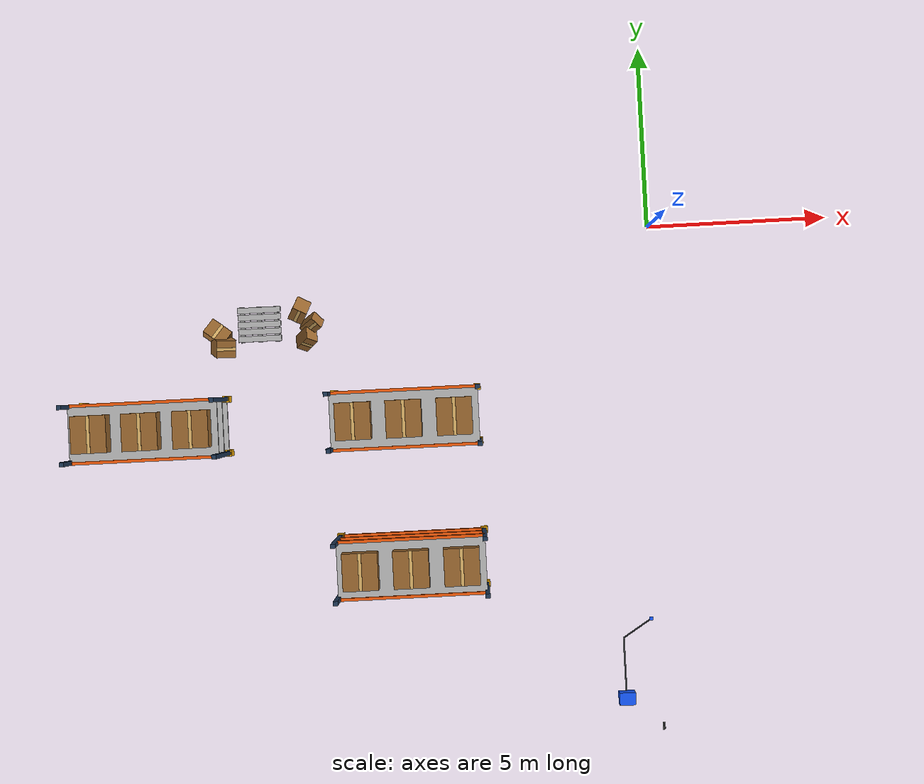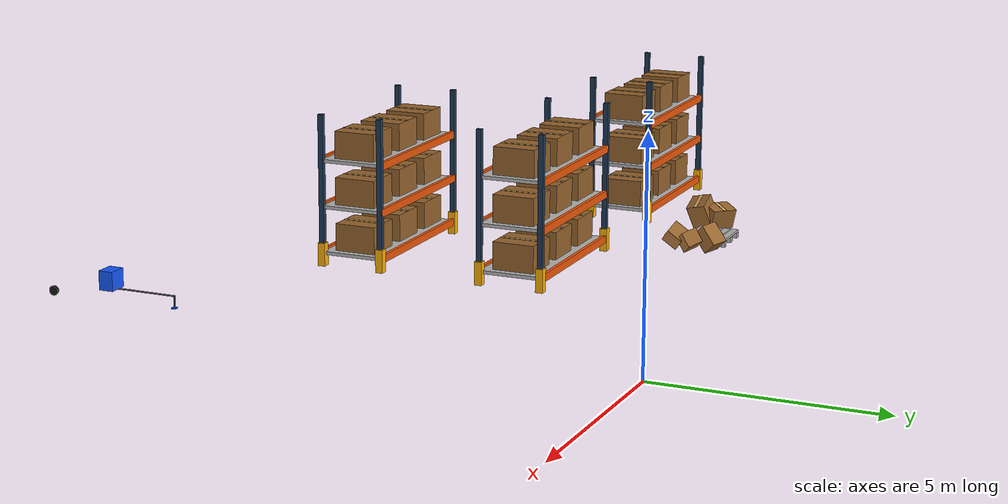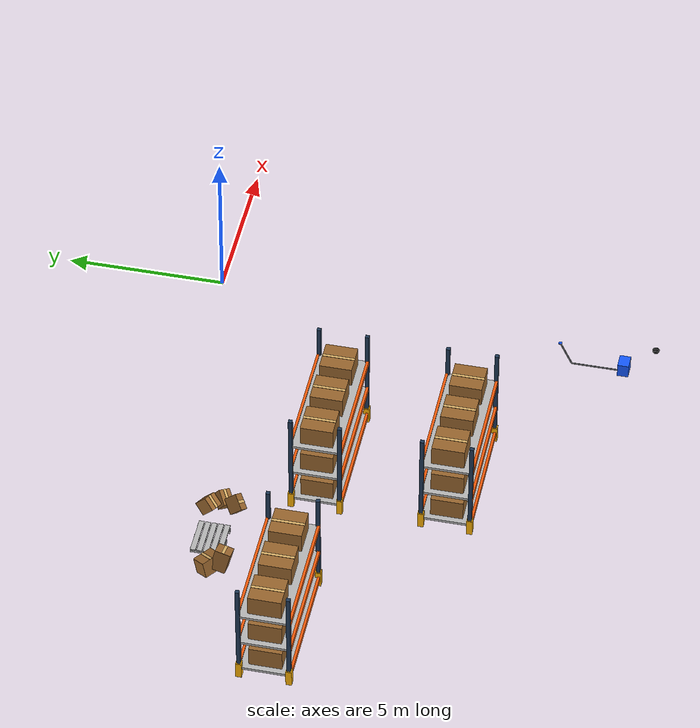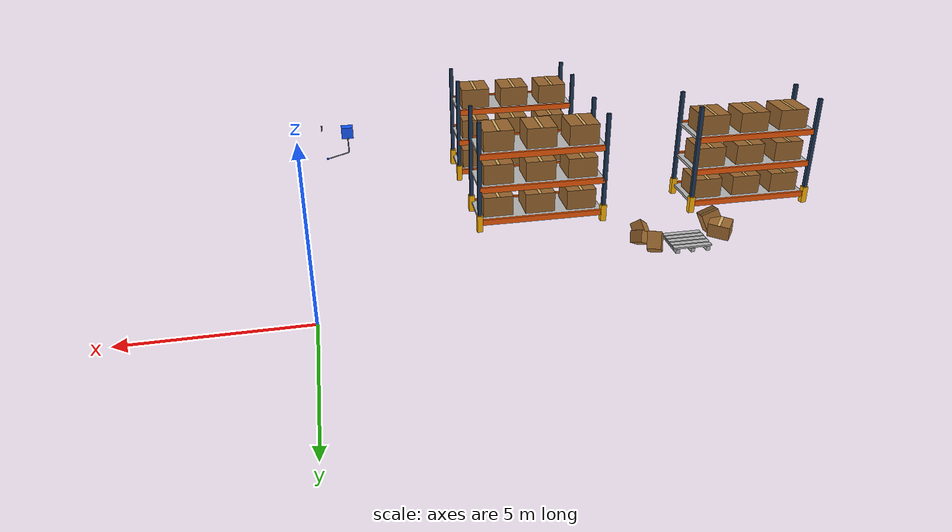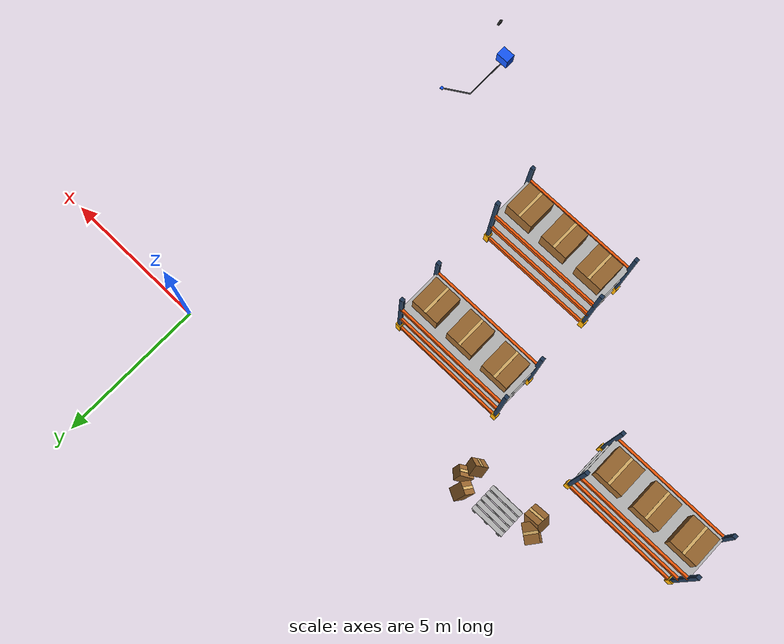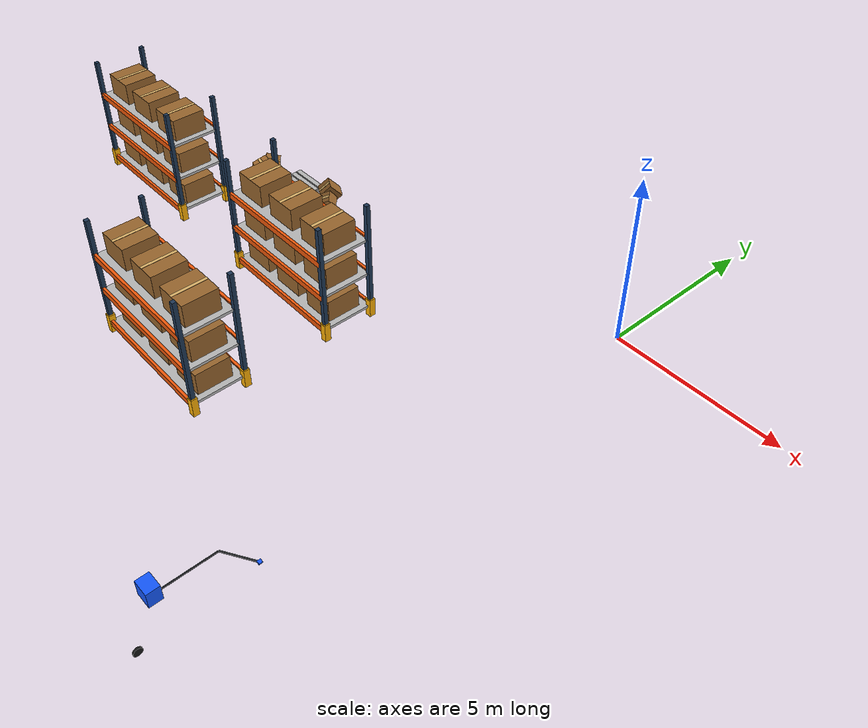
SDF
<sdf version="1.9">
 <world name="factory">
  <model name="rack_-1_0_0">
   <static>true</static>
   <pose>-7 -9 0 0 0 0</pose>
   <link name="body">
    <visual name="post0_visual">
     <pose>-2 -0.75 1.8 0 0 0</pose>
     <geometry><box><size>0.12 0.12 3.6</size></box></geometry>
     <material><ambient>.12 .22 .34 1</ambient><diffuse>.12 .22 .34 1</diffuse></material>
    </visual>
    <collision name="post0_collision">
     <pose>-2 -0.75 1.8 0 0 0</pose>
     <geometry><box><size>0.12 0.12 3.6</size></box></geometry>
    </collision>
    <visual name="guard0_visual">
     <pose>-2 -0.75 0.275 0 0 0</pose>
     <geometry><box><size>0.18 0.18 0.55</size></box></geometry>
     <material><ambient>1 .7 .02 1</ambient><diffuse>1 .7 .02 1</diffuse></material>
    </visual>
    <collision name="guard0_collision">
     <pose>-2 -0.75 0.275 0 0 0</pose>
     <geometry><box><size>0.18 0.18 0.55</size></box></geometry>
    </collision>
    <visual name="post1_visual">
     <pose>2 -0.75 1.8 0 0 0</pose>
     <geometry><box><size>0.12 0.12 3.6</size></box></geometry>
     <material><ambient>.12 .22 .34 1</ambient><diffuse>.12 .22 .34 1</diffuse></material>
    </visual>
    <collision name="post1_collision">
     <pose>2 -0.75 1.8 0 0 0</pose>
     <geometry><box><size>0.12 0.12 3.6</size></box></geometry>
    </collision>
    <visual name="guard1_visual">
     <pose>2 -0.75 0.275 0 0 0</pose>
     <geometry><box><size>0.18 0.18 0.55</size></box></geometry>
     <material><ambient>1 .7 .02 1</ambient><diffuse>1 .7 .02 1</diffuse></material>
    </visual>
    <collision name="guard1_collision">
     <pose>2 -0.75 0.275 0 0 0</pose>
     <geometry><box><size>0.18 0.18 0.55</size></box></geometry>
    </collision>
    <visual name="post2_visual">
     <pose>-2 0.75 1.8 0 0 0</pose>
     <geometry><box><size>0.12 0.12 3.6</size></box></geometry>
     <material><ambient>.12 .22 .34 1</ambient><diffuse>.12 .22 .34 1</diffuse></material>
    </visual>
    <collision name="post2_collision">
     <pose>-2 0.75 1.8 0 0 0</pose>
     <geometry><box><size>0.12 0.12 3.6</size></box></geometry>
    </collision>
    <visual name="guard2_visual">
     <pose>-2 0.75 0.275 0 0 0</pose>
     <geometry><box><size>0.18 0.18 0.55</size></box></geometry>
     <material><ambient>1 .7 .02 1</ambient><diffuse>1 .7 .02 1</diffuse></material>
    </visual>
    <collision name="guard2_collision">
     <pose>-2 0.75 0.275 0 0 0</pose>
     <geometry><box><size>0.18 0.18 0.55</size></box></geometry>
    </collision>
    <visual name="post3_visual">
     <pose>2 0.75 1.8 0 0 0</pose>
     <geometry><box><size>0.12 0.12 3.6</size></box></geometry>
     <material><ambient>.12 .22 .34 1</ambient><diffuse>.12 .22 .34 1</diffuse></material>
    </visual>
    <collision name="post3_collision">
     <pose>2 0.75 1.8 0 0 0</pose>
     <geometry><box><size>0.12 0.12 3.6</size></box></geometry>
    </collision>
    <visual name="guard3_visual">
     <pose>2 0.75 0.275 0 0 0</pose>
     <geometry><box><size>0.18 0.18 0.55</size></box></geometry>
     <material><ambient>1 .7 .02 1</ambient><diffuse>1 .7 .02 1</diffuse></material>
    </visual>
    <collision name="guard3_collision">
     <pose>2 0.75 0.275 0 0 0</pose>
     <geometry><box><size>0.18 0.18 0.55</size></box></geometry>
    </collision>
    <visual name="shelf0_visual">
     <pose>0 0 0.3 0 0 0</pose>
     <geometry><mesh><uri>model://factory_scene_assets/meshes/wood_010.dae</uri></mesh></geometry>
    </visual>
    <collision name="shelf0_collision">
     <pose>0 0 0.3 0 0 0</pose>
     <geometry><box><size>4 1.5 0.08</size></box></geometry>
    </collision>
    <visual name="beam0_0_visual">
     <pose>0 -0.77 0.3 0 0 0</pose>
     <geometry><box><size>4 0.08 0.18</size></box></geometry>
     <material><ambient>.95 .35 .035 1</ambient><diffuse>.95 .35 .035 1</diffuse></material>
    </visual>
    <collision name="beam0_0_collision">
     <pose>0 -0.77 0.3 0 0 0</pose>
     <geometry><box><size>4 0.08 0.18</size></box></geometry>
    </collision>
    <visual name="beam0_1_visual">
     <pose>0 0.77 0.3 0 0 0</pose>
     <geometry><box><size>4 0.08 0.18</size></box></geometry>
     <material><ambient>.95 .35 .035 1</ambient><diffuse>.95 .35 .035 1</diffuse></material>
    </visual>
    <collision name="beam0_1_collision">
     <pose>0 0.77 0.3 0 0 0</pose>
     <geometry><box><size>4 0.08 0.18</size></box></geometry>
    </collision>
    <visual name="cargo0_0_visual">
     <pose>-1.35 0 0.665 0 0 0</pose>
     <geometry><box><size>0.95 1 0.65</size></box></geometry>
     <material><ambient>.60 .40 .18 1</ambient><diffuse>.60 .40 .18 1</diffuse></material>
    </visual>
    <collision name="cargo0_0_collision">
     <pose>-1.35 0 0.665 0 0 0</pose>
     <geometry><box><size>0.95 1 0.65</size></box></geometry>
    </collision>
    <visual name="cargo0_0_tape_visual">
     <pose>-1.35 0 0.993 0 0 0</pose>
     <geometry><box><size>0.09 1 0.006</size></box></geometry>
     <material><ambient>.85 .69 .4 1</ambient><diffuse>.85 .69 .4 1</diffuse></material>
    </visual>
    <visual name="cargo0_1_visual">
     <pose>0 0 0.665 0 0 0</pose>
     <geometry><box><size>0.95 1 0.65</size></box></geometry>
     <material><ambient>.60 .40 .18 1</ambient><diffuse>.60 .40 .18 1</diffuse></material>
    </visual>
    <collision name="cargo0_1_collision">
     <pose>0 0 0.665 0 0 0</pose>
     <geometry><box><size>0.95 1 0.65</size></box></geometry>
    </collision>
    <visual name="cargo0_1_tape_visual">
     <pose>0 0 0.993 0 0 0</pose>
     <geometry><box><size>0.09 1 0.006</size></box></geometry>
     <material><ambient>.85 .69 .4 1</ambient><diffuse>.85 .69 .4 1</diffuse></material>
    </visual>
    <visual name="cargo0_2_visual">
     <pose>1.35 0 0.665 0 0 0</pose>
     <geometry><box><size>0.95 1 0.65</size></box></geometry>
     <material><ambient>.60 .40 .18 1</ambient><diffuse>.60 .40 .18 1</diffuse></material>
    </visual>
    <collision name="cargo0_2_collision">
     <pose>1.35 0 0.665 0 0 0</pose>
     <geometry><box><size>0.95 1 0.65</size></box></geometry>
    </collision>
    <visual name="cargo0_2_tape_visual">
     <pose>1.35 0 0.993 0 0 0</pose>
     <geometry><box><size>0.09 1 0.006</size></box></geometry>
     <material><ambient>.85 .69 .4 1</ambient><diffuse>.85 .69 .4 1</diffuse></material>
    </visual>
    <visual name="shelf1_visual">
     <pose>0 0 1.4 0 0 0</pose>
     <geometry><mesh><uri>model://factory_scene_assets/meshes/wood_010.dae</uri></mesh></geometry>
    </visual>
    <collision name="shelf1_collision">
     <pose>0 0 1.4 0 0 0</pose>
     <geometry><box><size>4 1.5 0.08</size></box></geometry>
    </collision>
    <visual name="beam1_0_visual">
     <pose>0 -0.77 1.4 0 0 0</pose>
     <geometry><box><size>4 0.08 0.18</size></box></geometry>
     <material><ambient>.95 .35 .035 1</ambient><diffuse>.95 .35 .035 1</diffuse></material>
    </visual>
    <collision name="beam1_0_collision">
     <pose>0 -0.77 1.4 0 0 0</pose>
     <geometry><box><size>4 0.08 0.18</size></box></geometry>
    </collision>
    <visual name="beam1_1_visual">
     <pose>0 0.77 1.4 0 0 0</pose>
     <geometry><box><size>4 0.08 0.18</size></box></geometry>
     <material><ambient>.95 .35 .035 1</ambient><diffuse>.95 .35 .035 1</diffuse></material>
    </visual>
    <collision name="beam1_1_collision">
     <pose>0 0.77 1.4 0 0 0</pose>
     <geometry><box><size>4 0.08 0.18</size></box></geometry>
    </collision>
    <visual name="cargo1_0_visual">
     <pose>-1.35 0 1.765 0 0 0</pose>
     <geometry><box><size>0.95 1 0.65</size></box></geometry>
     <material><ambient>.60 .40 .18 1</ambient><diffuse>.60 .40 .18 1</diffuse></material>
    </visual>
    <collision name="cargo1_0_collision">
     <pose>-1.35 0 1.765 0 0 0</pose>
     <geometry><box><size>0.95 1 0.65</size></box></geometry>
    </collision>
    <visual name="cargo1_0_tape_visual">
     <pose>-1.35 0 2.093 0 0 0</pose>
     <geometry><box><size>0.09 1 0.006</size></box></geometry>
     <material><ambient>.85 .69 .4 1</ambient><diffuse>.85 .69 .4 1</diffuse></material>
    </visual>
    <visual name="cargo1_1_visual">
     <pose>0 0 1.765 0 0 0</pose>
     <geometry><box><size>0.95 1 0.65</size></box></geometry>
     <material><ambient>.60 .40 .18 1</ambient><diffuse>.60 .40 .18 1</diffuse></material>
    </visual>
    <collision name="cargo1_1_collision">
     <pose>0 0 1.765 0 0 0</pose>
     <geometry><box><size>0.95 1 0.65</size></box></geometry>
    </collision>
    <visual name="cargo1_1_tape_visual">
     <pose>0 0 2.093 0 0 0</pose>
     <geometry><box><size>0.09 1 0.006</size></box></geometry>
     <material><ambient>.85 .69 .4 1</ambient><diffuse>.85 .69 .4 1</diffuse></material>
    </visual>
    <visual name="cargo1_2_visual">
     <pose>1.35 0 1.765 0 0 0</pose>
     <geometry><box><size>0.95 1 0.65</size></box></geometry>
     <material><ambient>.60 .40 .18 1</ambient><diffuse>.60 .40 .18 1</diffuse></material>
    </visual>
    <collision name="cargo1_2_collision">
     <pose>1.35 0 1.765 0 0 0</pose>
     <geometry><box><size>0.95 1 0.65</size></box></geometry>
    </collision>
    <visual name="cargo1_2_tape_visual">
     <pose>1.35 0 2.093 0 0 0</pose>
     <geometry><box><size>0.09 1 0.006</size></box></geometry>
     <material><ambient>.85 .69 .4 1</ambient><diffuse>.85 .69 .4 1</diffuse></material>
    </visual>
    <visual name="shelf2_visual">
     <pose>0 0 2.5 0 0 0</pose>
     <geometry><mesh><uri>model://factory_scene_assets/meshes/wood_010.dae</uri></mesh></geometry>
    </visual>
    <collision name="shelf2_collision">
     <pose>0 0 2.5 0 0 0</pose>
     <geometry><box><size>4 1.5 0.08</size></box></geometry>
    </collision>
    <visual name="beam2_0_visual">
     <pose>0 -0.77 2.5 0 0 0</pose>
     <geometry><box><size>4 0.08 0.18</size></box></geometry>
     <material><ambient>.95 .35 .035 1</ambient><diffuse>.95 .35 .035 1</diffuse></material>
    </visual>
    <collision name="beam2_0_collision">
     <pose>0 -0.77 2.5 0 0 0</pose>
     <geometry><box><size>4 0.08 0.18</size></box></geometry>
    </collision>
    <visual name="beam2_1_visual">
     <pose>0 0.77 2.5 0 0 0</pose>
     <geometry><box><size>4 0.08 0.18</size></box></geometry>
     <material><ambient>.95 .35 .035 1</ambient><diffuse>.95 .35 .035 1</diffuse></material>
    </visual>
    <collision name="beam2_1_collision">
     <pose>0 0.77 2.5 0 0 0</pose>
     <geometry><box><size>4 0.08 0.18</size></box></geometry>
    </collision>
    <visual name="cargo2_0_visual">
     <pose>-1.35 0 2.865 0 0 0</pose>
     <geometry><box><size>0.95 1 0.65</size></box></geometry>
     <material><ambient>.60 .40 .18 1</ambient><diffuse>.60 .40 .18 1</diffuse></material>
    </visual>
    <collision name="cargo2_0_collision">
     <pose>-1.35 0 2.865 0 0 0</pose>
     <geometry><box><size>0.95 1 0.65</size></box></geometry>
    </collision>
    <visual name="cargo2_0_tape_visual">
     <pose>-1.35 0 3.193 0 0 0</pose>
     <geometry><box><size>0.09 1 0.006</size></box></geometry>
     <material><ambient>.85 .69 .4 1</ambient><diffuse>.85 .69 .4 1</diffuse></material>
    </visual>
    <visual name="cargo2_1_visual">
     <pose>0 0 2.865 0 0 0</pose>
     <geometry><box><size>0.95 1 0.65</size></box></geometry>
     <material><ambient>.60 .40 .18 1</ambient><diffuse>.60 .40 .18 1</diffuse></material>
    </visual>
    <collision name="cargo2_1_collision">
     <pose>0 0 2.865 0 0 0</pose>
     <geometry><box><size>0.95 1 0.65</size></box></geometry>
    </collision>
    <visual name="cargo2_1_tape_visual">
     <pose>0 0 3.193 0 0 0</pose>
     <geometry><box><size>0.09 1 0.006</size></box></geometry>
     <material><ambient>.85 .69 .4 1</ambient><diffuse>.85 .69 .4 1</diffuse></material>
    </visual>
    <visual name="cargo2_2_visual">
     <pose>1.35 0 2.865 0 0 0</pose>
     <geometry><box><size>0.95 1 0.65</size></box></geometry>
     <material><ambient>.60 .40 .18 1</ambient><diffuse>.60 .40 .18 1</diffuse></material>
    </visual>
    <collision name="cargo2_2_collision">
     <pose>1.35 0 2.865 0 0 0</pose>
     <geometry><box><size>0.95 1 0.65</size></box></geometry>
    </collision>
    <visual name="cargo2_2_tape_visual">
     <pose>1.35 0 3.193 0 0 0</pose>
     <geometry><box><size>0.09 1 0.006</size></box></geometry>
     <material><ambient>.85 .69 .4 1</ambient><diffuse>.85 .69 .4 1</diffuse></material>
    </visual>
   </link>
  </model>
  <model name="rack_-1_0_1">
   <static>true</static>
   <pose>-7 -5 0 0 0 0</pose>
   <link name="body">
    <visual name="post0_visual">
     <pose>-2 -0.75 1.8 0 0 0</pose>
     <geometry><box><size>0.12 0.12 3.6</size></box></geometry>
     <material><ambient>.12 .22 .34 1</ambient><diffuse>.12 .22 .34 1</diffuse></material>
    </visual>
    <collision name="post0_collision">
     <pose>-2 -0.75 1.8 0 0 0</pose>
     <geometry><box><size>0.12 0.12 3.6</size></box></geometry>
    </collision>
    <visual name="guard0_visual">
     <pose>-2 -0.75 0.275 0 0 0</pose>
     <geometry><box><size>0.18 0.18 0.55</size></box></geometry>
     <material><ambient>1 .7 .02 1</ambient><diffuse>1 .7 .02 1</diffuse></material>
    </visual>
    <collision name="guard0_collision">
     <pose>-2 -0.75 0.275 0 0 0</pose>
     <geometry><box><size>0.18 0.18 0.55</size></box></geometry>
    </collision>
    <visual name="post1_visual">
     <pose>2 -0.75 1.8 0 0 0</pose>
     <geometry><box><size>0.12 0.12 3.6</size></box></geometry>
     <material><ambient>.12 .22 .34 1</ambient><diffuse>.12 .22 .34 1</diffuse></material>
    </visual>
    <collision name="post1_collision">
     <pose>2 -0.75 1.8 0 0 0</pose>
     <geometry><box><size>0.12 0.12 3.6</size></box></geometry>
    </collision>
    <visual name="guard1_visual">
     <pose>2 -0.75 0.275 0 0 0</pose>
     <geometry><box><size>0.18 0.18 0.55</size></box></geometry>
     <material><ambient>1 .7 .02 1</ambient><diffuse>1 .7 .02 1</diffuse></material>
    </visual>
    <collision name="guard1_collision">
     <pose>2 -0.75 0.275 0 0 0</pose>
     <geometry><box><size>0.18 0.18 0.55</size></box></geometry>
    </collision>
    <visual name="post2_visual">
     <pose>-2 0.75 1.8 0 0 0</pose>
     <geometry><box><size>0.12 0.12 3.6</size></box></geometry>
     <material><ambient>.12 .22 .34 1</ambient><diffuse>.12 .22 .34 1</diffuse></material>
    </visual>
    <collision name="post2_collision">
     <pose>-2 0.75 1.8 0 0 0</pose>
     <geometry><box><size>0.12 0.12 3.6</size></box></geometry>
    </collision>
    <visual name="guard2_visual">
     <pose>-2 0.75 0.275 0 0 0</pose>
     <geometry><box><size>0.18 0.18 0.55</size></box></geometry>
     <material><ambient>1 .7 .02 1</ambient><diffuse>1 .7 .02 1</diffuse></material>
    </visual>
    <collision name="guard2_collision">
     <pose>-2 0.75 0.275 0 0 0</pose>
     <geometry><box><size>0.18 0.18 0.55</size></box></geometry>
    </collision>
    <visual name="post3_visual">
     <pose>2 0.75 1.8 0 0 0</pose>
     <geometry><box><size>0.12 0.12 3.6</size></box></geometry>
     <material><ambient>.12 .22 .34 1</ambient><diffuse>.12 .22 .34 1</diffuse></material>
    </visual>
    <collision name="post3_collision">
     <pose>2 0.75 1.8 0 0 0</pose>
     <geometry><box><size>0.12 0.12 3.6</size></box></geometry>
    </collision>
    <visual name="guard3_visual">
     <pose>2 0.75 0.275 0 0 0</pose>
     <geometry><box><size>0.18 0.18 0.55</size></box></geometry>
     <material><ambient>1 .7 .02 1</ambient><diffuse>1 .7 .02 1</diffuse></material>
    </visual>
    <collision name="guard3_collision">
     <pose>2 0.75 0.275 0 0 0</pose>
     <geometry><box><size>0.18 0.18 0.55</size></box></geometry>
    </collision>
    <visual name="shelf0_visual">
     <pose>0 0 0.3 0 0 0</pose>
     <geometry><mesh><uri>model://factory_scene_assets/meshes/wood_010.dae</uri></mesh></geometry>
    </visual>
    <collision name="shelf0_collision">
     <pose>0 0 0.3 0 0 0</pose>
     <geometry><box><size>4 1.5 0.08</size></box></geometry>
    </collision>
    <visual name="beam0_0_visual">
     <pose>0 -0.77 0.3 0 0 0</pose>
     <geometry><box><size>4 0.08 0.18</size></box></geometry>
     <material><ambient>.95 .35 .035 1</ambient><diffuse>.95 .35 .035 1</diffuse></material>
    </visual>
    <collision name="beam0_0_collision">
     <pose>0 -0.77 0.3 0 0 0</pose>
     <geometry><box><size>4 0.08 0.18</size></box></geometry>
    </collision>
    <visual name="beam0_1_visual">
     <pose>0 0.77 0.3 0 0 0</pose>
     <geometry><box><size>4 0.08 0.18</size></box></geometry>
     <material><ambient>.95 .35 .035 1</ambient><diffuse>.95 .35 .035 1</diffuse></material>
    </visual>
    <collision name="beam0_1_collision">
     <pose>0 0.77 0.3 0 0 0</pose>
     <geometry><box><size>4 0.08 0.18</size></box></geometry>
    </collision>
    <visual name="cargo0_0_visual">
     <pose>-1.35 0 0.665 0 0 0</pose>
     <geometry><box><size>0.95 1 0.65</size></box></geometry>
     <material><ambient>.60 .40 .18 1</ambient><diffuse>.60 .40 .18 1</diffuse></material>
    </visual>
    <collision name="cargo0_0_collision">
     <pose>-1.35 0 0.665 0 0 0</pose>
     <geometry><box><size>0.95 1 0.65</size></box></geometry>
    </collision>
    <visual name="cargo0_0_tape_visual">
     <pose>-1.35 0 0.993 0 0 0</pose>
     <geometry><box><size>0.09 1 0.006</size></box></geometry>
     <material><ambient>.85 .69 .4 1</ambient><diffuse>.85 .69 .4 1</diffuse></material>
    </visual>
    <visual name="cargo0_1_visual">
     <pose>0 0 0.665 0 0 0</pose>
     <geometry><box><size>0.95 1 0.65</size></box></geometry>
     <material><ambient>.60 .40 .18 1</ambient><diffuse>.60 .40 .18 1</diffuse></material>
    </visual>
    <collision name="cargo0_1_collision">
     <pose>0 0 0.665 0 0 0</pose>
     <geometry><box><size>0.95 1 0.65</size></box></geometry>
    </collision>
    <visual name="cargo0_1_tape_visual">
     <pose>0 0 0.993 0 0 0</pose>
     <geometry><box><size>0.09 1 0.006</size></box></geometry>
     <material><ambient>.85 .69 .4 1</ambient><diffuse>.85 .69 .4 1</diffuse></material>
    </visual>
    <visual name="cargo0_2_visual">
     <pose>1.35 0 0.665 0 0 0</pose>
     <geometry><box><size>0.95 1 0.65</size></box></geometry>
     <material><ambient>.60 .40 .18 1</ambient><diffuse>.60 .40 .18 1</diffuse></material>
    </visual>
    <collision name="cargo0_2_collision">
     <pose>1.35 0 0.665 0 0 0</pose>
     <geometry><box><size>0.95 1 0.65</size></box></geometry>
    </collision>
    <visual name="cargo0_2_tape_visual">
     <pose>1.35 0 0.993 0 0 0</pose>
     <geometry><box><size>0.09 1 0.006</size></box></geometry>
     <material><ambient>.85 .69 .4 1</ambient><diffuse>.85 .69 .4 1</diffuse></material>
    </visual>
    <visual name="shelf1_visual">
     <pose>0 0 1.4 0 0 0</pose>
     <geometry><mesh><uri>model://factory_scene_assets/meshes/wood_010.dae</uri></mesh></geometry>
    </visual>
    <collision name="shelf1_collision">
     <pose>0 0 1.4 0 0 0</pose>
     <geometry><box><size>4 1.5 0.08</size></box></geometry>
    </collision>
    <visual name="beam1_0_visual">
     <pose>0 -0.77 1.4 0 0 0</pose>
     <geometry><box><size>4 0.08 0.18</size></box></geometry>
     <material><ambient>.95 .35 .035 1</ambient><diffuse>.95 .35 .035 1</diffuse></material>
    </visual>
    <collision name="beam1_0_collision">
     <pose>0 -0.77 1.4 0 0 0</pose>
     <geometry><box><size>4 0.08 0.18</size></box></geometry>
    </collision>
    <visual name="beam1_1_visual">
     <pose>0 0.77 1.4 0 0 0</pose>
     <geometry><box><size>4 0.08 0.18</size></box></geometry>
     <material><ambient>.95 .35 .035 1</ambient><diffuse>.95 .35 .035 1</diffuse></material>
    </visual>
    <collision name="beam1_1_collision">
     <pose>0 0.77 1.4 0 0 0</pose>
     <geometry><box><size>4 0.08 0.18</size></box></geometry>
    </collision>
    <visual name="cargo1_0_visual">
     <pose>-1.35 0 1.765 0 0 0</pose>
     <geometry><box><size>0.95 1 0.65</size></box></geometry>
     <material><ambient>.60 .40 .18 1</ambient><diffuse>.60 .40 .18 1</diffuse></material>
    </visual>
    <collision name="cargo1_0_collision">
     <pose>-1.35 0 1.765 0 0 0</pose>
     <geometry><box><size>0.95 1 0.65</size></box></geometry>
    </collision>
    <visual name="cargo1_0_tape_visual">
     <pose>-1.35 0 2.093 0 0 0</pose>
     <geometry><box><size>0.09 1 0.006</size></box></geometry>
     <material><ambient>.85 .69 .4 1</ambient><diffuse>.85 .69 .4 1</diffuse></material>
    </visual>
    <visual name="cargo1_1_visual">
     <pose>0 0 1.765 0 0 0</pose>
     <geometry><box><size>0.95 1 0.65</size></box></geometry>
     <material><ambient>.60 .40 .18 1</ambient><diffuse>.60 .40 .18 1</diffuse></material>
    </visual>
    <collision name="cargo1_1_collision">
     <pose>0 0 1.765 0 0 0</pose>
     <geometry><box><size>0.95 1 0.65</size></box></geometry>
    </collision>
    <visual name="cargo1_1_tape_visual">
     <pose>0 0 2.093 0 0 0</pose>
     <geometry><box><size>0.09 1 0.006</size></box></geometry>
     <material><ambient>.85 .69 .4 1</ambient><diffuse>.85 .69 .4 1</diffuse></material>
    </visual>
    <visual name="cargo1_2_visual">
     <pose>1.35 0 1.765 0 0 0</pose>
     <geometry><box><size>0.95 1 0.65</size></box></geometry>
     <material><ambient>.60 .40 .18 1</ambient><diffuse>.60 .40 .18 1</diffuse></material>
    </visual>
    <collision name="cargo1_2_collision">
     <pose>1.35 0 1.765 0 0 0</pose>
     <geometry><box><size>0.95 1 0.65</size></box></geometry>
    </collision>
    <visual name="cargo1_2_tape_visual">
     <pose>1.35 0 2.093 0 0 0</pose>
     <geometry><box><size>0.09 1 0.006</size></box></geometry>
     <material><ambient>.85 .69 .4 1</ambient><diffuse>.85 .69 .4 1</diffuse></material>
    </visual>
    <visual name="shelf2_visual">
     <pose>0 0 2.5 0 0 0</pose>
     <geometry><mesh><uri>model://factory_scene_assets/meshes/wood_010.dae</uri></mesh></geometry>
    </visual>
    <collision name="shelf2_collision">
     <pose>0 0 2.5 0 0 0</pose>
     <geometry><box><size>4 1.5 0.08</size></box></geometry>
    </collision>
    <visual name="beam2_0_visual">
     <pose>0 -0.77 2.5 0 0 0</pose>
     <geometry><box><size>4 0.08 0.18</size></box></geometry>
     <material><ambient>.95 .35 .035 1</ambient><diffuse>.95 .35 .035 1</diffuse></material>
    </visual>
    <collision name="beam2_0_collision">
     <pose>0 -0.77 2.5 0 0 0</pose>
     <geometry><box><size>4 0.08 0.18</size></box></geometry>
    </collision>
    <visual name="beam2_1_visual">
     <pose>0 0.77 2.5 0 0 0</pose>
     <geometry><box><size>4 0.08 0.18</size></box></geometry>
     <material><ambient>.95 .35 .035 1</ambient><diffuse>.95 .35 .035 1</diffuse></material>
    </visual>
    <collision name="beam2_1_collision">
     <pose>0 0.77 2.5 0 0 0</pose>
     <geometry><box><size>4 0.08 0.18</size></box></geometry>
    </collision>
    <visual name="cargo2_0_visual">
     <pose>-1.35 0 2.865 0 0 0</pose>
     <geometry><box><size>0.95 1 0.65</size></box></geometry>
     <material><ambient>.60 .40 .18 1</ambient><diffuse>.60 .40 .18 1</diffuse></material>
    </visual>
    <collision name="cargo2_0_collision">
     <pose>-1.35 0 2.865 0 0 0</pose>
     <geometry><box><size>0.95 1 0.65</size></box></geometry>
    </collision>
    <visual name="cargo2_0_tape_visual">
     <pose>-1.35 0 3.193 0 0 0</pose>
     <geometry><box><size>0.09 1 0.006</size></box></geometry>
     <material><ambient>.85 .69 .4 1</ambient><diffuse>.85 .69 .4 1</diffuse></material>
    </visual>
    <visual name="cargo2_1_visual">
     <pose>0 0 2.865 0 0 0</pose>
     <geometry><box><size>0.95 1 0.65</size></box></geometry>
     <material><ambient>.60 .40 .18 1</ambient><diffuse>.60 .40 .18 1</diffuse></material>
    </visual>
    <collision name="cargo2_1_collision">
     <pose>0 0 2.865 0 0 0</pose>
     <geometry><box><size>0.95 1 0.65</size></box></geometry>
    </collision>
    <visual name="cargo2_1_tape_visual">
     <pose>0 0 3.193 0 0 0</pose>
     <geometry><box><size>0.09 1 0.006</size></box></geometry>
     <material><ambient>.85 .69 .4 1</ambient><diffuse>.85 .69 .4 1</diffuse></material>
    </visual>
    <visual name="cargo2_2_visual">
     <pose>1.35 0 2.865 0 0 0</pose>
     <geometry><box><size>0.95 1 0.65</size></box></geometry>
     <material><ambient>.60 .40 .18 1</ambient><diffuse>.60 .40 .18 1</diffuse></material>
    </visual>
    <collision name="cargo2_2_collision">
     <pose>1.35 0 2.865 0 0 0</pose>
     <geometry><box><size>0.95 1 0.65</size></box></geometry>
    </collision>
    <visual name="cargo2_2_tape_visual">
     <pose>1.35 0 3.193 0 0 0</pose>
     <geometry><box><size>0.09 1 0.006</size></box></geometry>
     <material><ambient>.85 .69 .4 1</ambient><diffuse>.85 .69 .4 1</diffuse></material>
    </visual>
   </link>
  </model>
  <model name="rack_-1_1_1">
   <static>true</static>
   <pose>-14 -5 0 0 0 0</pose>
   <link name="body">
    <visual name="post0_visual">
     <pose>-2 -0.75 1.8 0 0 0</pose>
     <geometry><box><size>0.12 0.12 3.6</size></box></geometry>
     <material><ambient>.12 .22 .34 1</ambient><diffuse>.12 .22 .34 1</diffuse></material>
    </visual>
    <collision name="post0_collision">
     <pose>-2 -0.75 1.8 0 0 0</pose>
     <geometry><box><size>0.12 0.12 3.6</size></box></geometry>
    </collision>
    <visual name="guard0_visual">
     <pose>-2 -0.75 0.275 0 0 0</pose>
     <geometry><box><size>0.18 0.18 0.55</size></box></geometry>
     <material><ambient>1 .7 .02 1</ambient><diffuse>1 .7 .02 1</diffuse></material>
    </visual>
    <collision name="guard0_collision">
     <pose>-2 -0.75 0.275 0 0 0</pose>
     <geometry><box><size>0.18 0.18 0.55</size></box></geometry>
    </collision>
    <visual name="post1_visual">
     <pose>2 -0.75 1.8 0 0 0</pose>
     <geometry><box><size>0.12 0.12 3.6</size></box></geometry>
     <material><ambient>.12 .22 .34 1</ambient><diffuse>.12 .22 .34 1</diffuse></material>
    </visual>
    <collision name="post1_collision">
     <pose>2 -0.75 1.8 0 0 0</pose>
     <geometry><box><size>0.12 0.12 3.6</size></box></geometry>
    </collision>
    <visual name="guard1_visual">
     <pose>2 -0.75 0.275 0 0 0</pose>
     <geometry><box><size>0.18 0.18 0.55</size></box></geometry>
     <material><ambient>1 .7 .02 1</ambient><diffuse>1 .7 .02 1</diffuse></material>
    </visual>
    <collision name="guard1_collision">
     <pose>2 -0.75 0.275 0 0 0</pose>
     <geometry><box><size>0.18 0.18 0.55</size></box></geometry>
    </collision>
    <visual name="post2_visual">
     <pose>-2 0.75 1.8 0 0 0</pose>
     <geometry><box><size>0.12 0.12 3.6</size></box></geometry>
     <material><ambient>.12 .22 .34 1</ambient><diffuse>.12 .22 .34 1</diffuse></material>
    </visual>
    <collision name="post2_collision">
     <pose>-2 0.75 1.8 0 0 0</pose>
     <geometry><box><size>0.12 0.12 3.6</size></box></geometry>
    </collision>
    <visual name="guard2_visual">
     <pose>-2 0.75 0.275 0 0 0</pose>
     <geometry><box><size>0.18 0.18 0.55</size></box></geometry>
     <material><ambient>1 .7 .02 1</ambient><diffuse>1 .7 .02 1</diffuse></material>
    </visual>
    <collision name="guard2_collision">
     <pose>-2 0.75 0.275 0 0 0</pose>
     <geometry><box><size>0.18 0.18 0.55</size></box></geometry>
    </collision>
    <visual name="post3_visual">
     <pose>2 0.75 1.8 0 0 0</pose>
     <geometry><box><size>0.12 0.12 3.6</size></box></geometry>
     <material><ambient>.12 .22 .34 1</ambient><diffuse>.12 .22 .34 1</diffuse></material>
    </visual>
    <collision name="post3_collision">
     <pose>2 0.75 1.8 0 0 0</pose>
     <geometry><box><size>0.12 0.12 3.6</size></box></geometry>
    </collision>
    <visual name="guard3_visual">
     <pose>2 0.75 0.275 0 0 0</pose>
     <geometry><box><size>0.18 0.18 0.55</size></box></geometry>
     <material><ambient>1 .7 .02 1</ambient><diffuse>1 .7 .02 1</diffuse></material>
    </visual>
    <collision name="guard3_collision">
     <pose>2 0.75 0.275 0 0 0</pose>
     <geometry><box><size>0.18 0.18 0.55</size></box></geometry>
    </collision>
    <visual name="shelf0_visual">
     <pose>0 0 0.3 0 0 0</pose>
     <geometry><mesh><uri>model://factory_scene_assets/meshes/wood_010.dae</uri></mesh></geometry>
    </visual>
    <collision name="shelf0_collision">
     <pose>0 0 0.3 0 0 0</pose>
     <geometry><box><size>4 1.5 0.08</size></box></geometry>
    </collision>
    <visual name="beam0_0_visual">
     <pose>0 -0.77 0.3 0 0 0</pose>
     <geometry><box><size>4 0.08 0.18</size></box></geometry>
     <material><ambient>.95 .35 .035 1</ambient><diffuse>.95 .35 .035 1</diffuse></material>
    </visual>
    <collision name="beam0_0_collision">
     <pose>0 -0.77 0.3 0 0 0</pose>
     <geometry><box><size>4 0.08 0.18</size></box></geometry>
    </collision>
    <visual name="beam0_1_visual">
     <pose>0 0.77 0.3 0 0 0</pose>
     <geometry><box><size>4 0.08 0.18</size></box></geometry>
     <material><ambient>.95 .35 .035 1</ambient><diffuse>.95 .35 .035 1</diffuse></material>
    </visual>
    <collision name="beam0_1_collision">
     <pose>0 0.77 0.3 0 0 0</pose>
     <geometry><box><size>4 0.08 0.18</size></box></geometry>
    </collision>
    <visual name="cargo0_0_visual">
     <pose>-1.35 0 0.665 0 0 0</pose>
     <geometry><box><size>0.95 1 0.65</size></box></geometry>
     <material><ambient>.60 .40 .18 1</ambient><diffuse>.60 .40 .18 1</diffuse></material>
    </visual>
    <collision name="cargo0_0_collision">
     <pose>-1.35 0 0.665 0 0 0</pose>
     <geometry><box><size>0.95 1 0.65</size></box></geometry>
    </collision>
    <visual name="cargo0_0_tape_visual">
     <pose>-1.35 0 0.993 0 0 0</pose>
     <geometry><box><size>0.09 1 0.006</size></box></geometry>
     <material><ambient>.85 .69 .4 1</ambient><diffuse>.85 .69 .4 1</diffuse></material>
    </visual>
    <visual name="cargo0_1_visual">
     <pose>0 0 0.665 0 0 0</pose>
     <geometry><box><size>0.95 1 0.65</size></box></geometry>
     <material><ambient>.60 .40 .18 1</ambient><diffuse>.60 .40 .18 1</diffuse></material>
    </visual>
    <collision name="cargo0_1_collision">
     <pose>0 0 0.665 0 0 0</pose>
     <geometry><box><size>0.95 1 0.65</size></box></geometry>
    </collision>
    <visual name="cargo0_1_tape_visual">
     <pose>0 0 0.993 0 0 0</pose>
     <geometry><box><size>0.09 1 0.006</size></box></geometry>
     <material><ambient>.85 .69 .4 1</ambient><diffuse>.85 .69 .4 1</diffuse></material>
    </visual>
    <visual name="cargo0_2_visual">
     <pose>1.35 0 0.665 0 0 0</pose>
     <geometry><box><size>0.95 1 0.65</size></box></geometry>
     <material><ambient>.60 .40 .18 1</ambient><diffuse>.60 .40 .18 1</diffuse></material>
    </visual>
    <collision name="cargo0_2_collision">
     <pose>1.35 0 0.665 0 0 0</pose>
     <geometry><box><size>0.95 1 0.65</size></box></geometry>
    </collision>
    <visual name="cargo0_2_tape_visual">
     <pose>1.35 0 0.993 0 0 0</pose>
     <geometry><box><size>0.09 1 0.006</size></box></geometry>
     <material><ambient>.85 .69 .4 1</ambient><diffuse>.85 .69 .4 1</diffuse></material>
    </visual>
    <visual name="shelf1_visual">
     <pose>0 0 1.4 0 0 0</pose>
     <geometry><mesh><uri>model://factory_scene_assets/meshes/wood_010.dae</uri></mesh></geometry>
    </visual>
    <collision name="shelf1_collision">
     <pose>0 0 1.4 0 0 0</pose>
     <geometry><box><size>4 1.5 0.08</size></box></geometry>
    </collision>
    <visual name="beam1_0_visual">
     <pose>0 -0.77 1.4 0 0 0</pose>
     <geometry><box><size>4 0.08 0.18</size></box></geometry>
     <material><ambient>.95 .35 .035 1</ambient><diffuse>.95 .35 .035 1</diffuse></material>
    </visual>
    <collision name="beam1_0_collision">
     <pose>0 -0.77 1.4 0 0 0</pose>
     <geometry><box><size>4 0.08 0.18</size></box></geometry>
    </collision>
    <visual name="beam1_1_visual">
     <pose>0 0.77 1.4 0 0 0</pose>
     <geometry><box><size>4 0.08 0.18</size></box></geometry>
     <material><ambient>.95 .35 .035 1</ambient><diffuse>.95 .35 .035 1</diffuse></material>
    </visual>
    <collision name="beam1_1_collision">
     <pose>0 0.77 1.4 0 0 0</pose>
     <geometry><box><size>4 0.08 0.18</size></box></geometry>
    </collision>
    <visual name="cargo1_0_visual">
     <pose>-1.35 0 1.765 0 0 0</pose>
     <geometry><box><size>0.95 1 0.65</size></box></geometry>
     <material><ambient>.60 .40 .18 1</ambient><diffuse>.60 .40 .18 1</diffuse></material>
    </visual>
    <collision name="cargo1_0_collision">
     <pose>-1.35 0 1.765 0 0 0</pose>
     <geometry><box><size>0.95 1 0.65</size></box></geometry>
    </collision>
    <visual name="cargo1_0_tape_visual">
     <pose>-1.35 0 2.093 0 0 0</pose>
     <geometry><box><size>0.09 1 0.006</size></box></geometry>
     <material><ambient>.85 .69 .4 1</ambient><diffuse>.85 .69 .4 1</diffuse></material>
    </visual>
    <visual name="cargo1_1_visual">
     <pose>0 0 1.765 0 0 0</pose>
     <geometry><box><size>0.95 1 0.65</size></box></geometry>
     <material><ambient>.60 .40 .18 1</ambient><diffuse>.60 .40 .18 1</diffuse></material>
    </visual>
    <collision name="cargo1_1_collision">
     <pose>0 0 1.765 0 0 0</pose>
     <geometry><box><size>0.95 1 0.65</size></box></geometry>
    </collision>
    <visual name="cargo1_1_tape_visual">
     <pose>0 0 2.093 0 0 0</pose>
     <geometry><box><size>0.09 1 0.006</size></box></geometry>
     <material><ambient>.85 .69 .4 1</ambient><diffuse>.85 .69 .4 1</diffuse></material>
    </visual>
    <visual name="cargo1_2_visual">
     <pose>1.35 0 1.765 0 0 0</pose>
     <geometry><box><size>0.95 1 0.65</size></box></geometry>
     <material><ambient>.60 .40 .18 1</ambient><diffuse>.60 .40 .18 1</diffuse></material>
    </visual>
    <collision name="cargo1_2_collision">
     <pose>1.35 0 1.765 0 0 0</pose>
     <geometry><box><size>0.95 1 0.65</size></box></geometry>
    </collision>
    <visual name="cargo1_2_tape_visual">
     <pose>1.35 0 2.093 0 0 0</pose>
     <geometry><box><size>0.09 1 0.006</size></box></geometry>
     <material><ambient>.85 .69 .4 1</ambient><diffuse>.85 .69 .4 1</diffuse></material>
    </visual>
    <visual name="shelf2_visual">
     <pose>0 0 2.5 0 0 0</pose>
     <geometry><mesh><uri>model://factory_scene_assets/meshes/wood_010.dae</uri></mesh></geometry>
    </visual>
    <collision name="shelf2_collision">
     <pose>0 0 2.5 0 0 0</pose>
     <geometry><box><size>4 1.5 0.08</size></box></geometry>
    </collision>
    <visual name="beam2_0_visual">
     <pose>0 -0.77 2.5 0 0 0</pose>
     <geometry><box><size>4 0.08 0.18</size></box></geometry>
     <material><ambient>.95 .35 .035 1</ambient><diffuse>.95 .35 .035 1</diffuse></material>
    </visual>
    <collision name="beam2_0_collision">
     <pose>0 -0.77 2.5 0 0 0</pose>
     <geometry><box><size>4 0.08 0.18</size></box></geometry>
    </collision>
    <visual name="beam2_1_visual">
     <pose>0 0.77 2.5 0 0 0</pose>
     <geometry><box><size>4 0.08 0.18</size></box></geometry>
     <material><ambient>.95 .35 .035 1</ambient><diffuse>.95 .35 .035 1</diffuse></material>
    </visual>
    <collision name="beam2_1_collision">
     <pose>0 0.77 2.5 0 0 0</pose>
     <geometry><box><size>4 0.08 0.18</size></box></geometry>
    </collision>
    <visual name="cargo2_0_visual">
     <pose>-1.35 0 2.865 0 0 0</pose>
     <geometry><box><size>0.95 1 0.65</size></box></geometry>
     <material><ambient>.60 .40 .18 1</ambient><diffuse>.60 .40 .18 1</diffuse></material>
    </visual>
    <collision name="cargo2_0_collision">
     <pose>-1.35 0 2.865 0 0 0</pose>
     <geometry><box><size>0.95 1 0.65</size></box></geometry>
    </collision>
    <visual name="cargo2_0_tape_visual">
     <pose>-1.35 0 3.193 0 0 0</pose>
     <geometry><box><size>0.09 1 0.006</size></box></geometry>
     <material><ambient>.85 .69 .4 1</ambient><diffuse>.85 .69 .4 1</diffuse></material>
    </visual>
    <visual name="cargo2_1_visual">
     <pose>0 0 2.865 0 0 0</pose>
     <geometry><box><size>0.95 1 0.65</size></box></geometry>
     <material><ambient>.60 .40 .18 1</ambient><diffuse>.60 .40 .18 1</diffuse></material>
    </visual>
    <collision name="cargo2_1_collision">
     <pose>0 0 2.865 0 0 0</pose>
     <geometry><box><size>0.95 1 0.65</size></box></geometry>
    </collision>
    <visual name="cargo2_1_tape_visual">
     <pose>0 0 3.193 0 0 0</pose>
     <geometry><box><size>0.09 1 0.006</size></box></geometry>
     <material><ambient>.85 .69 .4 1</ambient><diffuse>.85 .69 .4 1</diffuse></material>
    </visual>
    <visual name="cargo2_2_visual">
     <pose>1.35 0 2.865 0 0 0</pose>
     <geometry><box><size>0.95 1 0.65</size></box></geometry>
     <material><ambient>.60 .40 .18 1</ambient><diffuse>.60 .40 .18 1</diffuse></material>
    </visual>
    <collision name="cargo2_2_collision">
     <pose>1.35 0 2.865 0 0 0</pose>
     <geometry><box><size>0.95 1 0.65</size></box></geometry>
    </collision>
    <visual name="cargo2_2_tape_visual">
     <pose>1.35 0 3.193 0 0 0</pose>
     <geometry><box><size>0.09 1 0.006</size></box></geometry>
     <material><ambient>.85 .69 .4 1</ambient><diffuse>.85 .69 .4 1</diffuse></material>
    </visual>
   </link>
  </model>
  <model name="fallen_pallet_6">
   <static>true</static>
   <pose>-11 -2.2 0 0 0 0</pose>
   <link name="body">
    <visual name="runner0_visual">
     <pose>-0.48 0 0.065 0 0 0</pose>
     <geometry><mesh><uri>model://factory_scene_assets/meshes/wood_011.dae</uri></mesh></geometry>
    </visual>
    <collision name="runner0_collision">
     <pose>-0.48 0 0.065 0 0 0</pose>
     <geometry><box><size>0.12 1 0.13</size></box></geometry>
    </collision>
    <visual name="runner1_visual">
     <pose>0 0 0.065 0 0 0</pose>
     <geometry><mesh><uri>model://factory_scene_assets/meshes/wood_011.dae</uri></mesh></geometry>
    </visual>
    <collision name="runner1_collision">
     <pose>0 0 0.065 0 0 0</pose>
     <geometry><box><size>0.12 1 0.13</size></box></geometry>
    </collision>
    <visual name="runner2_visual">
     <pose>0.48 0 0.065 0 0 0</pose>
     <geometry><mesh><uri>model://factory_scene_assets/meshes/wood_011.dae</uri></mesh></geometry>
    </visual>
    <collision name="runner2_collision">
     <pose>0.48 0 0.065 0 0 0</pose>
     <geometry><box><size>0.12 1 0.13</size></box></geometry>
    </collision>
    <visual name="plank0_visual">
     <pose>0 -0.4 0.155 0 0 0</pose>
     <geometry><mesh><uri>model://factory_scene_assets/meshes/wood_012.dae</uri></mesh></geometry>
    </visual>
    <collision name="plank0_collision">
     <pose>0 -0.4 0.155 0 0 0</pose>
     <geometry><box><size>1.2 0.16 0.05</size></box></geometry>
    </collision>
    <visual name="plank1_visual">
     <pose>0 -0.2 0.155 0 0 0</pose>
     <geometry><mesh><uri>model://factory_scene_assets/meshes/wood_012.dae</uri></mesh></geometry>
    </visual>
    <collision name="plank1_collision">
     <pose>0 -0.2 0.155 0 0 0</pose>
     <geometry><box><size>1.2 0.16 0.05</size></box></geometry>
    </collision>
    <visual name="plank2_visual">
     <pose>0 0 0.155 0 0 0</pose>
     <geometry><mesh><uri>model://factory_scene_assets/meshes/wood_012.dae</uri></mesh></geometry>
    </visual>
    <collision name="plank2_collision">
     <pose>0 0 0.155 0 0 0</pose>
     <geometry><box><size>1.2 0.16 0.05</size></box></geometry>
    </collision>
    <visual name="plank3_visual">
     <pose>0 0.2 0.155 0 0 0</pose>
     <geometry><mesh><uri>model://factory_scene_assets/meshes/wood_012.dae</uri></mesh></geometry>
    </visual>
    <collision name="plank3_collision">
     <pose>0 0.2 0.155 0 0 0</pose>
     <geometry><box><size>1.2 0.16 0.05</size></box></geometry>
    </collision>
    <visual name="plank4_visual">
     <pose>0 0.4 0.155 0 0 0</pose>
     <geometry><mesh><uri>model://factory_scene_assets/meshes/wood_012.dae</uri></mesh></geometry>
    </visual>
    <collision name="plank4_collision">
     <pose>0 0.4 0.155 0 0 0</pose>
     <geometry><box><size>1.2 0.16 0.05</size></box></geometry>
    </collision>
   </link>
  </model>
  <model name="fallen_box_06_1">
   <static>true</static>
   <pose>-12 -2.795579 0 0 0 0</pose>
   <link name="body">
    <visual name="box_visual">
     <pose>0 0 0.4387553 0.3837071 -0.2149587 1.48218</pose>
     <geometry><box><size>0.4828831 0.5510796 0.6103634</size></box></geometry>
     <material><ambient>.60 .40 .18 1</ambient><diffuse>.60 .40 .18 1</diffuse></material>
    </visual>
    <collision name="box_collision">
     <pose>0 0 0.4387553 0.3837071 -0.2149587 1.48218</pose>
     <geometry><box><size>0.4828831 0.5510796 0.6103634</size></box></geometry>
    </collision>
    <visual name="box_tape_visual">
     <pose>0.1095236 -0.07092837 0.7179501 0.3837071 -0.2149587 1.48218</pose>
     <geometry><box><size>0.09 0.5510796 0.006</size></box></geometry>
     <material><ambient>.85 .69 .4 1</ambient><diffuse>.85 .69 .4 1</diffuse></material>
    </visual>
   </link>
  </model>
  <model name="fallen_box_06_2">
   <static>true</static>
   <pose>-9.84 -1.878196 0 0 0 0</pose>
   <link name="body">
    <visual name="box_visual">
     <pose>0 0 0.3736986 -0.7149814 -0.1098931 2.66188</pose>
     <geometry><box><size>0.4196873 0.4279692 0.5362513</size></box></geometry>
     <material><ambient>.60 .40 .18 1</ambient><diffuse>.60 .40 .18 1</diffuse></material>
    </visual>
    <collision name="box_collision">
     <pose>0 0 0.3736986 -0.7149814 -0.1098931 2.66188</pose>
     <geometry><box><size>0.4196873 0.4279692 0.5362513</size></box></geometry>
    </collision>
    <visual name="box_tape_visual">
     <pose>-0.06211766 -0.1680503 0.5771921 -0.7149814 -0.1098931 2.66188</pose>
     <geometry><box><size>0.09 0.4279692 0.006</size></box></geometry>
     <material><ambient>.85 .69 .4 1</ambient><diffuse>.85 .69 .4 1</diffuse></material>
    </visual>
   </link>
  </model>
  <model name="fallen_box_06_3">
   <static>true</static>
   <pose>-12.16 -2.42113 0 0 0 0</pose>
   <link name="body">
    <visual name="box_visual">
     <pose>0 0 0.329248 -0.2693807 -0.03453057 -0.6566032</pose>
     <geometry><box><size>0.6606896 0.4604389 0.5119793</size></box></geometry>
     <material><ambient>.60 .40 .18 1</ambient><diffuse>.60 .40 .18 1</diffuse></material>
    </visual>
    <collision name="box_collision">
     <pose>0 0 0.329248 -0.2693807 -0.03453057 -0.6566032</pose>
     <geometry><box><size>0.6606896 0.4604389 0.5119793</size></box></geometry>
    </collision>
    <visual name="box_tape_visual">
     <pose>0.03524782 0.05985549 0.5787486 -0.2693807 -0.03453057 -0.6566032</pose>
     <geometry><box><size>0.09 0.4604389 0.006</size></box></geometry>
     <material><ambient>.85 .69 .4 1</ambient><diffuse>.85 .69 .4 1</diffuse></material>
    </visual>
   </link>
  </model>
  <model name="fallen_box_06_4">
   <static>true</static>
   <pose>-9.68 -2.68283 0 0 0 0</pose>
   <link name="body">
    <visual name="box_visual">
     <pose>0 0 0.3813627 -0.7608038 0.6397951 -2.467055</pose>
     <geometry><box><size>0.5083222 0.3574046 0.4157242</size></box></geometry>
     <material><ambient>.60 .40 .18 1</ambient><diffuse>.60 .40 .18 1</diffuse></material>
    </visual>
    <collision name="box_collision">
     <pose>0 0 0.3813627 -0.7608038 0.6397951 -2.467055</pose>
     <geometry><box><size>0.5083222 0.3574046 0.4157242</size></box></geometry>
    </collision>
    <visual name="box_tape_visual">
     <pose>0.01958972 -0.1704948 0.5038804 -0.7608038 0.6397951 -2.467055</pose>
     <geometry><box><size>0.09 0.3574046 0.006</size></box></geometry>
     <material><ambient>.85 .69 .4 1</ambient><diffuse>.85 .69 .4 1</diffuse></material>
    </visual>
   </link>
  </model>
  <model name="fallen_box_06_6">
   <static>true</static>
   <pose>-9.52 -2.277476 0 0 0 0</pose>
   <link name="body">
    <visual name="box_visual">
     <pose>0 0 0.3430357 -0.5494023 -0.3293203 2.350244</pose>
     <geometry><box><size>0.3788458 0.5002574 0.367242</size></box></geometry>
     <material><ambient>.60 .40 .18 1</ambient><diffuse>.60 .40 .18 1</diffuse></material>
    </visual>
    <collision name="box_collision">
     <pose>0 0 0.3430357 -0.5494023 -0.3293203 2.350244</pose>
     <geometry><box><size>0.3788458 0.5002574 0.367242</size></box></geometry>
    </collision>
    <visual name="box_tape_visual">
     <pose>-0.03313729 -0.1051076 0.4936402 -0.5494023 -0.3293203 2.350244</pose>
     <geometry><box><size>0.09 0.5002574 0.006</size></box></geometry>
     <material><ambient>.85 .69 .4 1</ambient><diffuse>.85 .69 .4 1</diffuse></material>
    </visual>
   </link>
  </model>
  <model name="aisle_robot_left_wheel">
   <static>false</static>
   <allow_auto_disable>false</allow_auto_disable>
   <link name="left_wheel">
    <inertial>
     <mass>0.25</mass>
     <inertia><ixx>0.000808333333</ixx><iyy>0.0015125</iyy><izz>0.000808333333</izz></inertia>
    </inertial>
    <visual name="tire">
     <pose>0 0 0 1.57079632679 0 0</pose>
     <geometry><cylinder><radius>0.11</radius><length>0.05</length></cylinder></geometry>
     <material><ambient>0.09 0.09 0.09 1</ambient><diffuse>0.09 0.09 0.09 1</diffuse></material>
    </visual>
    <visual name="rotation_spoke">
     <pose>0 0.027 0 0 0 0</pose>
     <geometry><box><size>0.18 0.005 0.015</size></box></geometry>
     <material><ambient>0.65 0.65 0.65 1</ambient><diffuse>0.65 0.65 0.65 1</diffuse></material>
    </visual>
    <gravity>false</gravity>
   </link>
   <pose>-0.25 -14.0 0.115 0 0 1.5707963267948966</pose>
  </model>
  <model name="step2_outside_gateway">
   <static>true</static>
   <pose>-1.25 -13.15 0.225 0 0 0</pose>
   <link name="body">
    <visual name="blue_box">
     <geometry><box><size>0.45 0.35 0.45</size></box></geometry>
     <material>
      <ambient>0.08 0.35 1.0 1</ambient>
      <diffuse>0.08 0.35 1.0 1</diffuse>
      <emissive>0.0064 0.027999999999999997 0.08 1</emissive>
     </material>
    </visual>
    <collision name="box_collision"><geometry><box><size>0.45 0.35 0.45</size></box></geometry></collision>
   </link>
  </model>
  <model name="step2_entrance_blue_beacon">
   <static>true</static>
   <allow_auto_disable>false</allow_auto_disable>
   <pose>-0.45 -11.0 0.02 0 0 0</pose>
   <link name="body">
    <gravity>false</gravity>
    <inertial>
     <mass>0.03</mass>
     <inertia><ixx>.000016</ixx><iyy>.000016</iyy><izz>.000032</izz><ixy>0</ixy><ixz>0</ixz><iyz>0</iyz></inertia>
    </inertial>
    <visual name="tile">
     <geometry><box><size>0.1 0.1 0.03</size></box></geometry>
     <material>
      <ambient>0.08 0.35 1.0 1</ambient>
      <diffuse>0.08 0.35 1.0 1</diffuse>
      <emissive>0.052000000000000005 0.22749999999999998 0.65 1</emissive>
     </material>
     <cast_shadows>false</cast_shadows>
     <visibility_flags>4294967295</visibility_flags>
    </visual>
    <visual name="cable_0">
     <pose>-0.8 -1.2375000000000007 0.0 0 0 1.5707963267948966</pose>
     <geometry><box><size>1.4749999999999996 0.04 0.025</size></box></geometry>
     <material>
      <ambient>0.025 0.03 0.04 1</ambient>
      <diffuse>0.025 0.03 0.04 1</diffuse>
      <emissive>0.002 0.0024 0.0032 1</emissive>
     </material>
     <cast_shadows>false</cast_shadows>
     <visibility_flags>4294967295</visibility_flags>
    </visual>
    <visual name="cable_1">
     <pose>-0.39999999999999997 -0.25 0.0 0 0 0.5585993153435624</pose>
     <geometry><box><size>0.9433981132056605 0.04 0.025</size></box></geometry>
     <material>
      <ambient>0.025 0.03 0.04 1</ambient>
      <diffuse>0.025 0.03 0.04 1</diffuse>
      <emissive>0.002 0.0024 0.0032 1</emissive>
     </material>
     <cast_shadows>false</cast_shadows>
     <visibility_flags>4294967295</visibility_flags>
    </visual>
   </link>
   <plugin filename="gz-sim-pose-publisher-system" name="gz::sim::systems::PosePublisher">
    <publish_link_pose>false</publish_link_pose>
    <publish_visual_pose>false</publish_visual_pose>
    <publish_collision_pose>false</publish_collision_pose>
    <publish_sensor_pose>false</publish_sensor_pose>
    <publish_model_pose>true</publish_model_pose>
    <publish_nested_model_pose>true</publish_nested_model_pose>
    <static_publisher>false</static_publisher>
    <use_pose_vector_msg>true</use_pose_vector_msg>
    <update_frequency>10</update_frequency>
    <topic>/model/step2_entrance_blue_beacon/pose</topic>
   </plugin>
  </model>
 </world>
</sdf>
